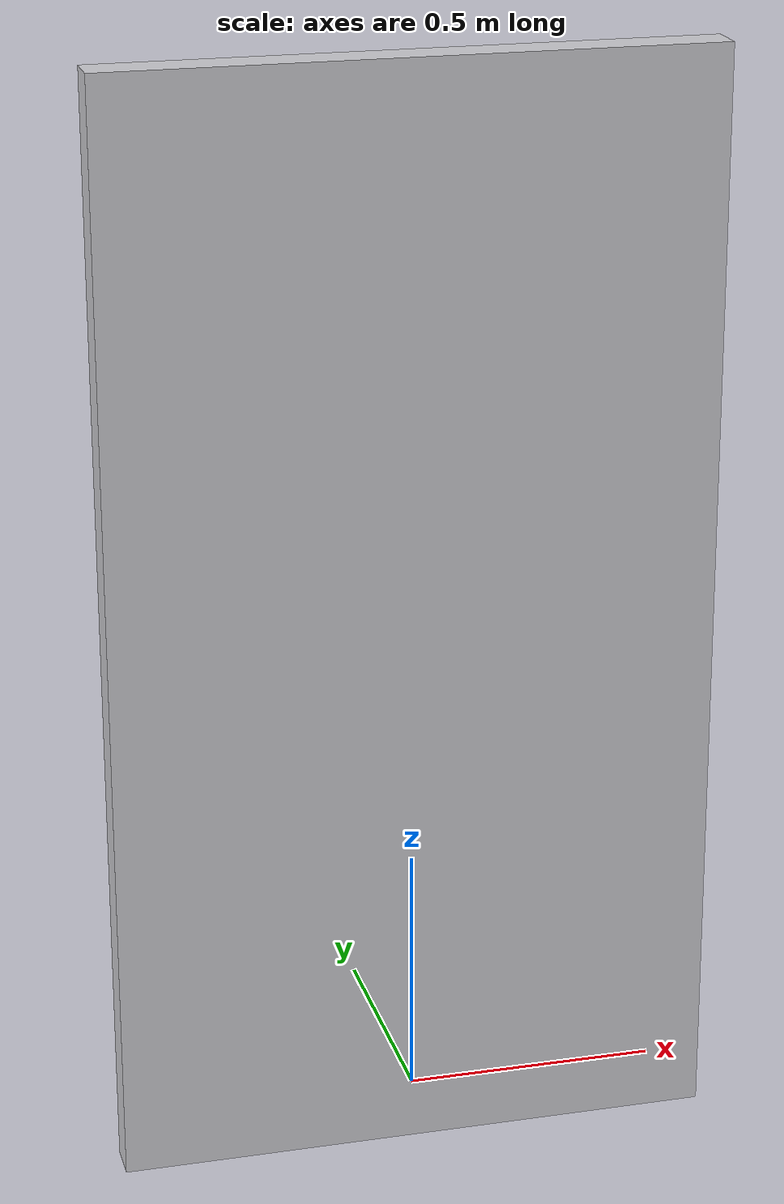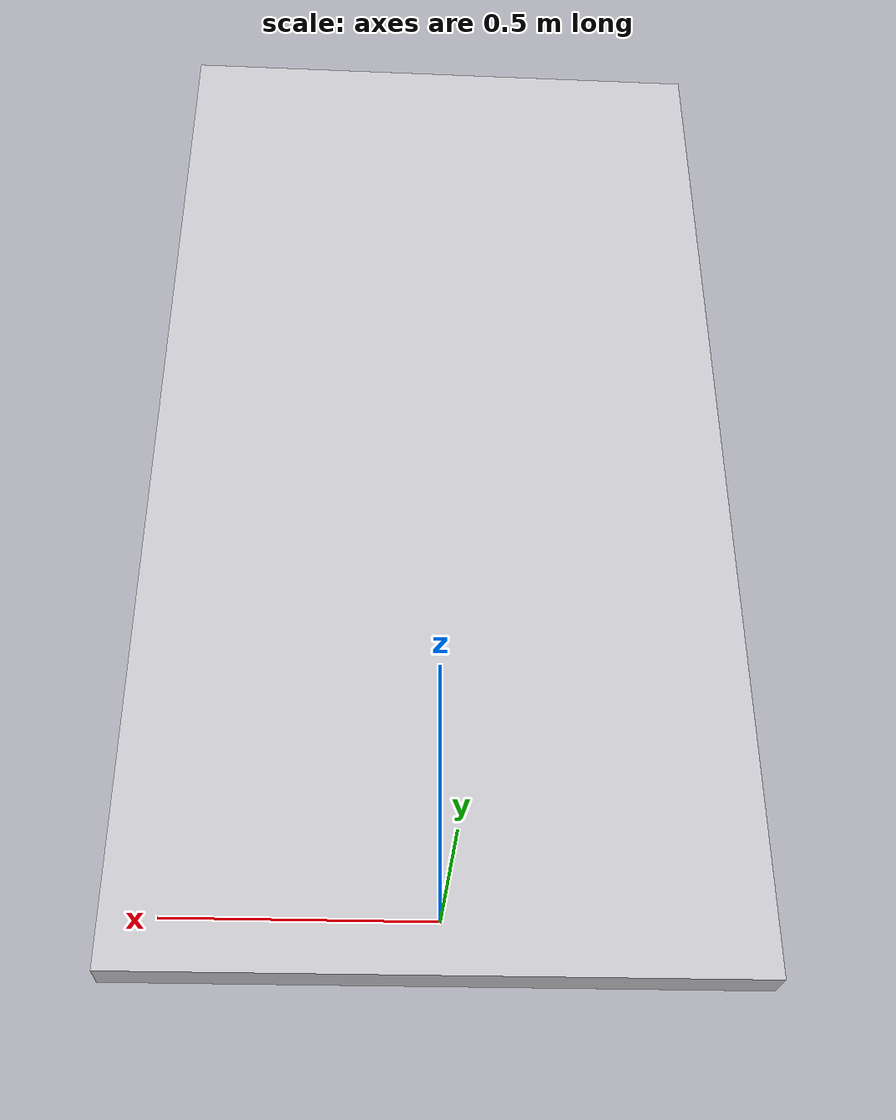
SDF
<?xml version='1.0' encoding='utf-8'?>
<sdf version="1.6">
  <model name="aws_robomaker_hospital_elevator_01_door">
    <static>true</static>
    <link name="link">
      <collision name="collision_1">
        <pose>0 0 1 0 0 0</pose>
        <geometry>
          <box>
            <size>1.2 0.08 2.2</size>
          </box>
        </geometry>
      </collision>
      <visual name="visual_1">
        <pose>0 0 1 0 0 0</pose>
        <geometry>
          <box>
            <size>1.2 0.08 2.2</size>
          </box>
        </geometry>
        <material>
          <ambient>0.8 0.8 0.82 1</ambient>
          <diffuse>0.8 0.8 0.82 1</diffuse>
          <specular>0.08 0.08 0.08 1</specular>
        </material>
      </visual>
    </link>
  </model>
</sdf>
